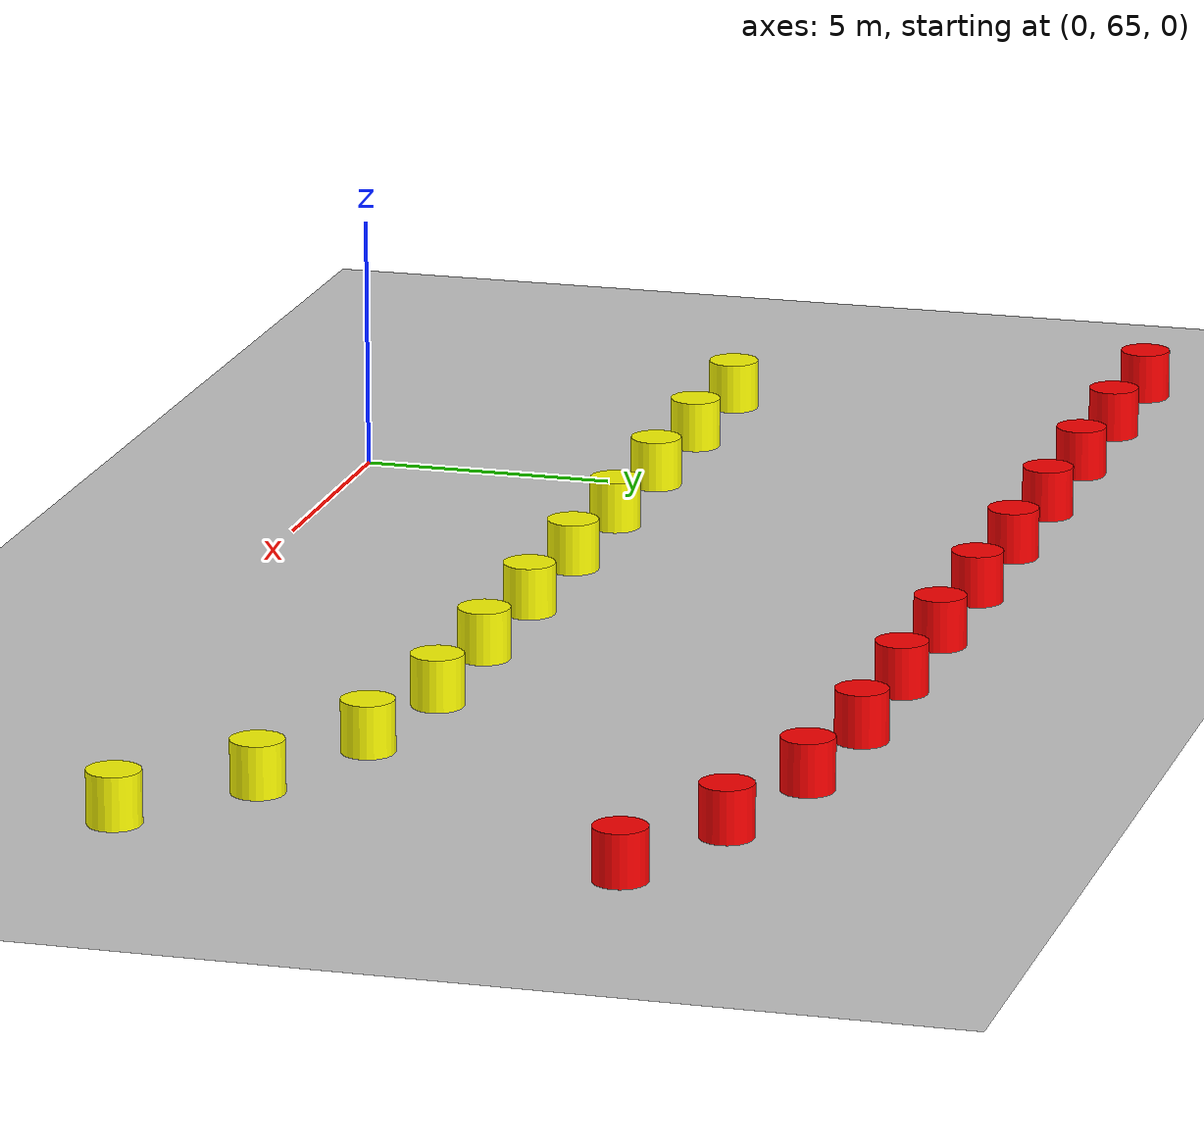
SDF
<sdf version="1.9">
 <world name="empty">
  <model name="ground_plane">
   <static>true</static>
   <link name="link">
    <collision name="collision">
     <geometry><plane><normal>0 0 1</normal><size>1000 1000</size></plane></geometry>
    </collision>
    <visual name="visual">
     <geometry><plane><normal>0 0 1</normal><size>1000 1000</size></plane></geometry>
     <material>
      <ambient>0.8 0.8 0.8 1</ambient>
      <diffuse>0.8 0.8 0.8 1</diffuse>
      <specular>0.8 0.8 0.8 1</specular>
     </material>
    </visual>
    <inertial>
     <mass>1</mass>
     <inertia><ixx>1</ixx><ixy>0</ixy><ixz>0</ixz><iyy>1</iyy><iyz>0</iyz><izz>1</izz></inertia>
    </inertial>
   </link>
  </model>
  <model name="red_cone_51">
   <pose>-9.000000000000004 79.0 0.5 0 -0 0</pose>
   <link name="cylinder_link">
    <inertial>
     <inertia>
      <ixx>0.14580000000000001</ixx>
      <ixy>0</ixy>
      <ixz>0</ixz>
      <iyy>0.14580000000000001</iyy>
      <iyz>0</iyz>
      <izz>0.125</izz>
     </inertia>
     <mass>1</mass>
    </inertial>
    <collision name="cylinder_collision">
     <geometry><cylinder><radius>0.5</radius><length>1</length></cylinder></geometry>
    </collision>
    <visual name="cylinder_visual">
     <geometry><cylinder><radius>0.5</radius><length>1</length></cylinder></geometry>
     <material><ambient>1 0 0 1</ambient><diffuse>1 0 0 1</diffuse><specular>1 1 1 1</specular></material>
    </visual>
   </link>
   <static>false</static>
  </model>
  <model name="red_cone_52">
   <pose>-6.0000000000000036 79.0 0.5 0 -0 0</pose>
   <link name="cylinder_link">
    <inertial>
     <inertia>
      <ixx>0.14580000000000001</ixx>
      <ixy>0</ixy>
      <ixz>0</ixz>
      <iyy>0.14580000000000001</iyy>
      <iyz>0</iyz>
      <izz>0.125</izz>
     </inertia>
     <mass>1</mass>
    </inertial>
    <collision name="cylinder_collision">
     <geometry><cylinder><radius>0.5</radius><length>1</length></cylinder></geometry>
    </collision>
    <visual name="cylinder_visual">
     <geometry><cylinder><radius>0.5</radius><length>1</length></cylinder></geometry>
     <material><ambient>1 0 0 1</ambient><diffuse>1 0 0 1</diffuse><specular>1 1 1 1</specular></material>
    </visual>
   </link>
   <static>false</static>
  </model>
  <model name="red_cone_53">
   <pose>-3.0000000000000036 79.0 0.5 0 -0 0</pose>
   <link name="cylinder_link">
    <inertial>
     <inertia>
      <ixx>0.14580000000000001</ixx>
      <ixy>0</ixy>
      <ixz>0</ixz>
      <iyy>0.14580000000000001</iyy>
      <iyz>0</iyz>
      <izz>0.125</izz>
     </inertia>
     <mass>1</mass>
    </inertial>
    <collision name="cylinder_collision">
     <geometry><cylinder><radius>0.5</radius><length>1</length></cylinder></geometry>
    </collision>
    <visual name="cylinder_visual">
     <geometry><cylinder><radius>0.5</radius><length>1</length></cylinder></geometry>
     <material><ambient>1 0 0 1</ambient><diffuse>1 0 0 1</diffuse><specular>1 1 1 1</specular></material>
    </visual>
   </link>
   <static>false</static>
  </model>
  <model name="red_cone_54">
   <pose>-3.552713678800501e-15 79.0 0.5 0 -0 0</pose>
   <link name="cylinder_link">
    <inertial>
     <inertia>
      <ixx>0.14580000000000001</ixx>
      <ixy>0</ixy>
      <ixz>0</ixz>
      <iyy>0.14580000000000001</iyy>
      <iyz>0</iyz>
      <izz>0.125</izz>
     </inertia>
     <mass>1</mass>
    </inertial>
    <collision name="cylinder_collision">
     <geometry><cylinder><radius>0.5</radius><length>1</length></cylinder></geometry>
    </collision>
    <visual name="cylinder_visual">
     <geometry><cylinder><radius>0.5</radius><length>1</length></cylinder></geometry>
     <material><ambient>1 0 0 1</ambient><diffuse>1 0 0 1</diffuse><specular>1 1 1 1</specular></material>
    </visual>
   </link>
   <static>false</static>
  </model>
  <model name="red_cone_55">
   <pose>2.9999999999999964 79.0 0.5 0 -0 0</pose>
   <link name="cylinder_link">
    <inertial>
     <inertia>
      <ixx>0.14580000000000001</ixx>
      <ixy>0</ixy>
      <ixz>0</ixz>
      <iyy>0.14580000000000001</iyy>
      <iyz>0</iyz>
      <izz>0.125</izz>
     </inertia>
     <mass>1</mass>
    </inertial>
    <collision name="cylinder_collision">
     <geometry><cylinder><radius>0.5</radius><length>1</length></cylinder></geometry>
    </collision>
    <visual name="cylinder_visual">
     <geometry><cylinder><radius>0.5</radius><length>1</length></cylinder></geometry>
     <material><ambient>1 0 0 1</ambient><diffuse>1 0 0 1</diffuse><specular>1 1 1 1</specular></material>
    </visual>
   </link>
   <static>false</static>
  </model>
  <model name="red_cone_56">
   <pose>5.9999999999999964 79.0 0.5 0 -0 0</pose>
   <link name="cylinder_link">
    <inertial>
     <inertia>
      <ixx>0.14580000000000001</ixx>
      <ixy>0</ixy>
      <ixz>0</ixz>
      <iyy>0.14580000000000001</iyy>
      <iyz>0</iyz>
      <izz>0.125</izz>
     </inertia>
     <mass>1</mass>
    </inertial>
    <collision name="cylinder_collision">
     <geometry><cylinder><radius>0.5</radius><length>1</length></cylinder></geometry>
    </collision>
    <visual name="cylinder_visual">
     <geometry><cylinder><radius>0.5</radius><length>1</length></cylinder></geometry>
     <material><ambient>1 0 0 1</ambient><diffuse>1 0 0 1</diffuse><specular>1 1 1 1</specular></material>
    </visual>
   </link>
   <static>false</static>
  </model>
  <model name="red_cone_57">
   <pose>8.999999999999996 79.0 0.5 0 -0 0</pose>
   <link name="cylinder_link">
    <inertial>
     <inertia>
      <ixx>0.14580000000000001</ixx>
      <ixy>0</ixy>
      <ixz>0</ixz>
      <iyy>0.14580000000000001</iyy>
      <iyz>0</iyz>
      <izz>0.125</izz>
     </inertia>
     <mass>1</mass>
    </inertial>
    <collision name="cylinder_collision">
     <geometry><cylinder><radius>0.5</radius><length>1</length></cylinder></geometry>
    </collision>
    <visual name="cylinder_visual">
     <geometry><cylinder><radius>0.5</radius><length>1</length></cylinder></geometry>
     <material><ambient>1 0 0 1</ambient><diffuse>1 0 0 1</diffuse><specular>1 1 1 1</specular></material>
    </visual>
   </link>
   <static>false</static>
  </model>
  <model name="red_cone_58">
   <pose>11.999999999999996 79.0 0.5 0 -0 0</pose>
   <link name="cylinder_link">
    <inertial>
     <inertia>
      <ixx>0.14580000000000001</ixx>
      <ixy>0</ixy>
      <ixz>0</ixz>
      <iyy>0.14580000000000001</iyy>
      <iyz>0</iyz>
      <izz>0.125</izz>
     </inertia>
     <mass>1</mass>
    </inertial>
    <collision name="cylinder_collision">
     <geometry><cylinder><radius>0.5</radius><length>1</length></cylinder></geometry>
    </collision>
    <visual name="cylinder_visual">
     <geometry><cylinder><radius>0.5</radius><length>1</length></cylinder></geometry>
     <material><ambient>1 0 0 1</ambient><diffuse>1 0 0 1</diffuse><specular>1 1 1 1</specular></material>
    </visual>
   </link>
   <static>false</static>
  </model>
  <model name="red_cone_59">
   <pose>14.999999999999996 79.0 0.5 0 -0 0</pose>
   <link name="cylinder_link">
    <inertial>
     <inertia>
      <ixx>0.14580000000000001</ixx>
      <ixy>0</ixy>
      <ixz>0</ixz>
      <iyy>0.14580000000000001</iyy>
      <iyz>0</iyz>
      <izz>0.125</izz>
     </inertia>
     <mass>1</mass>
    </inertial>
    <collision name="cylinder_collision">
     <geometry><cylinder><radius>0.5</radius><length>1</length></cylinder></geometry>
    </collision>
    <visual name="cylinder_visual">
     <geometry><cylinder><radius>0.5</radius><length>1</length></cylinder></geometry>
     <material><ambient>1 0 0 1</ambient><diffuse>1 0 0 1</diffuse><specular>1 1 1 1</specular></material>
    </visual>
   </link>
   <static>false</static>
  </model>
  <model name="red_cone_60">
   <pose>14.999999999999993 79.0 0.5 0 -0 0</pose>
   <link name="cylinder_link">
    <inertial>
     <inertia>
      <ixx>0.14580000000000001</ixx>
      <ixy>0</ixy>
      <ixz>0</ixz>
      <iyy>0.14580000000000001</iyy>
      <iyz>0</iyz>
      <izz>0.125</izz>
     </inertia>
     <mass>1</mass>
    </inertial>
    <collision name="cylinder_collision">
     <geometry><cylinder><radius>0.5</radius><length>1</length></cylinder></geometry>
    </collision>
    <visual name="cylinder_visual">
     <geometry><cylinder><radius>0.5</radius><length>1</length></cylinder></geometry>
     <material><ambient>1 0 0 1</ambient><diffuse>1 0 0 1</diffuse><specular>1 1 1 1</specular></material>
    </visual>
   </link>
   <static>false</static>
  </model>
  <model name="red_cone_61">
   <pose>17.98755015537325 78.76364954024481 0.5 0 -0 0</pose>
   <link name="cylinder_link">
    <inertial>
     <inertia>
      <ixx>0.14580000000000001</ixx>
      <ixy>0</ixy>
      <ixz>0</ixz>
      <iyy>0.14580000000000001</iyy>
      <iyz>0</iyz>
      <izz>0.125</izz>
     </inertia>
     <mass>1</mass>
    </inertial>
    <collision name="cylinder_collision">
     <geometry><cylinder><radius>0.5</radius><length>1</length></cylinder></geometry>
    </collision>
    <visual name="cylinder_visual">
     <geometry><cylinder><radius>0.5</radius><length>1</length></cylinder></geometry>
     <material><ambient>1 0 0 1</ambient><diffuse>1 0 0 1</diffuse><specular>1 1 1 1</specular></material>
    </visual>
   </link>
   <static>false</static>
  </model>
  <model name="red_cone_62">
   <pose>20.90077306308712 78.06047832306623 0.5 0 -0 0</pose>
   <link name="cylinder_link">
    <inertial>
     <inertia>
      <ixx>0.14580000000000001</ixx>
      <ixy>0</ixy>
      <ixz>0</ixz>
      <iyy>0.14580000000000001</iyy>
      <iyz>0</iyz>
      <izz>0.125</izz>
     </inertia>
     <mass>1</mass>
    </inertial>
    <collision name="cylinder_collision">
     <geometry><cylinder><radius>0.5</radius><length>1</length></cylinder></geometry>
    </collision>
    <visual name="cylinder_visual">
     <geometry><cylinder><radius>0.5</radius><length>1</length></cylinder></geometry>
     <material><ambient>1 0 0 1</ambient><diffuse>1 0 0 1</diffuse><specular>1 1 1 1</specular></material>
    </visual>
   </link>
   <static>false</static>
  </model>
  <model name="red_cone_63">
   <pose>23.667190662761865 76.90798054219762 0.5 0 -0 0</pose>
   <link name="cylinder_link">
    <inertial>
     <inertia>
      <ixx>0.14580000000000001</ixx>
      <ixy>0</ixy>
      <ixz>0</ixz>
      <iyy>0.14580000000000001</iyy>
      <iyz>0</iyz>
      <izz>0.125</izz>
     </inertia>
     <mass>1</mass>
    </inertial>
    <collision name="cylinder_collision">
     <geometry><cylinder><radius>0.5</radius><length>1</length></cylinder></geometry>
    </collision>
    <visual name="cylinder_visual">
     <geometry><cylinder><radius>0.5</radius><length>1</length></cylinder></geometry>
     <material><ambient>1 0 0 1</ambient><diffuse>1 0 0 1</diffuse><specular>1 1 1 1</specular></material>
    </visual>
   </link>
   <static>false</static>
  </model>
  <model name="yellow_cone_48">
   <pose>-6.0000000000000036 71.0 0.5 0 -0 0</pose>
   <link name="cylinder_link">
    <inertial>
     <inertia>
      <ixx>0.14580000000000001</ixx>
      <ixy>0</ixy>
      <ixz>0</ixz>
      <iyy>0.14580000000000001</iyy>
      <iyz>0</iyz>
      <izz>0.125</izz>
     </inertia>
     <mass>1</mass>
    </inertial>
    <collision name="cylinder_collision">
     <geometry><cylinder><radius>0.5</radius><length>1</length></cylinder></geometry>
    </collision>
    <visual name="cylinder_visual">
     <geometry><cylinder><radius>0.5</radius><length>1</length></cylinder></geometry>
     <material><ambient>1 1 0 1</ambient><diffuse>1 1 0 1</diffuse><specular>1 1 1 1</specular></material>
    </visual>
   </link>
   <static>false</static>
  </model>
  <model name="yellow_cone_49">
   <pose>-3.0000000000000036 71.0 0.5 0 -0 0</pose>
   <link name="cylinder_link">
    <inertial>
     <inertia>
      <ixx>0.14580000000000001</ixx>
      <ixy>0</ixy>
      <ixz>0</ixz>
      <iyy>0.14580000000000001</iyy>
      <iyz>0</iyz>
      <izz>0.125</izz>
     </inertia>
     <mass>1</mass>
    </inertial>
    <collision name="cylinder_collision">
     <geometry><cylinder><radius>0.5</radius><length>1</length></cylinder></geometry>
    </collision>
    <visual name="cylinder_visual">
     <geometry><cylinder><radius>0.5</radius><length>1</length></cylinder></geometry>
     <material><ambient>1 1 0 1</ambient><diffuse>1 1 0 1</diffuse><specular>1 1 1 1</specular></material>
    </visual>
   </link>
   <static>false</static>
  </model>
  <model name="yellow_cone_50">
   <pose>-3.552713678800501e-15 71.0 0.5 0 -0 0</pose>
   <link name="cylinder_link">
    <inertial>
     <inertia>
      <ixx>0.14580000000000001</ixx>
      <ixy>0</ixy>
      <ixz>0</ixz>
      <iyy>0.14580000000000001</iyy>
      <iyz>0</iyz>
      <izz>0.125</izz>
     </inertia>
     <mass>1</mass>
    </inertial>
    <collision name="cylinder_collision">
     <geometry><cylinder><radius>0.5</radius><length>1</length></cylinder></geometry>
    </collision>
    <visual name="cylinder_visual">
     <geometry><cylinder><radius>0.5</radius><length>1</length></cylinder></geometry>
     <material><ambient>1 1 0 1</ambient><diffuse>1 1 0 1</diffuse><specular>1 1 1 1</specular></material>
    </visual>
   </link>
   <static>false</static>
  </model>
  <model name="yellow_cone_51">
   <pose>2.9999999999999964 71.0 0.5 0 -0 0</pose>
   <link name="cylinder_link">
    <inertial>
     <inertia>
      <ixx>0.14580000000000001</ixx>
      <ixy>0</ixy>
      <ixz>0</ixz>
      <iyy>0.14580000000000001</iyy>
      <iyz>0</iyz>
      <izz>0.125</izz>
     </inertia>
     <mass>1</mass>
    </inertial>
    <collision name="cylinder_collision">
     <geometry><cylinder><radius>0.5</radius><length>1</length></cylinder></geometry>
    </collision>
    <visual name="cylinder_visual">
     <geometry><cylinder><radius>0.5</radius><length>1</length></cylinder></geometry>
     <material><ambient>1 1 0 1</ambient><diffuse>1 1 0 1</diffuse><specular>1 1 1 1</specular></material>
    </visual>
   </link>
   <static>false</static>
  </model>
  <model name="yellow_cone_52">
   <pose>5.9999999999999964 71.0 0.5 0 -0 0</pose>
   <link name="cylinder_link">
    <inertial>
     <inertia>
      <ixx>0.14580000000000001</ixx>
      <ixy>0</ixy>
      <ixz>0</ixz>
      <iyy>0.14580000000000001</iyy>
      <iyz>0</iyz>
      <izz>0.125</izz>
     </inertia>
     <mass>1</mass>
    </inertial>
    <collision name="cylinder_collision">
     <geometry><cylinder><radius>0.5</radius><length>1</length></cylinder></geometry>
    </collision>
    <visual name="cylinder_visual">
     <geometry><cylinder><radius>0.5</radius><length>1</length></cylinder></geometry>
     <material><ambient>1 1 0 1</ambient><diffuse>1 1 0 1</diffuse><specular>1 1 1 1</specular></material>
    </visual>
   </link>
   <static>false</static>
  </model>
  <model name="yellow_cone_53">
   <pose>8.999999999999996 71.0 0.5 0 -0 0</pose>
   <link name="cylinder_link">
    <inertial>
     <inertia>
      <ixx>0.14580000000000001</ixx>
      <ixy>0</ixy>
      <ixz>0</ixz>
      <iyy>0.14580000000000001</iyy>
      <iyz>0</iyz>
      <izz>0.125</izz>
     </inertia>
     <mass>1</mass>
    </inertial>
    <collision name="cylinder_collision">
     <geometry><cylinder><radius>0.5</radius><length>1</length></cylinder></geometry>
    </collision>
    <visual name="cylinder_visual">
     <geometry><cylinder><radius>0.5</radius><length>1</length></cylinder></geometry>
     <material><ambient>1 1 0 1</ambient><diffuse>1 1 0 1</diffuse><specular>1 1 1 1</specular></material>
    </visual>
   </link>
   <static>false</static>
  </model>
  <model name="yellow_cone_54">
   <pose>11.999999999999996 71.0 0.5 0 -0 0</pose>
   <link name="cylinder_link">
    <inertial>
     <inertia>
      <ixx>0.14580000000000001</ixx>
      <ixy>0</ixy>
      <ixz>0</ixz>
      <iyy>0.14580000000000001</iyy>
      <iyz>0</iyz>
      <izz>0.125</izz>
     </inertia>
     <mass>1</mass>
    </inertial>
    <collision name="cylinder_collision">
     <geometry><cylinder><radius>0.5</radius><length>1</length></cylinder></geometry>
    </collision>
    <visual name="cylinder_visual">
     <geometry><cylinder><radius>0.5</radius><length>1</length></cylinder></geometry>
     <material><ambient>1 1 0 1</ambient><diffuse>1 1 0 1</diffuse><specular>1 1 1 1</specular></material>
    </visual>
   </link>
   <static>false</static>
  </model>
  <model name="yellow_cone_55">
   <pose>14.999999999999996 71.0 0.5 0 -0 0</pose>
   <link name="cylinder_link">
    <inertial>
     <inertia>
      <ixx>0.14580000000000001</ixx>
      <ixy>0</ixy>
      <ixz>0</ixz>
      <iyy>0.14580000000000001</iyy>
      <iyz>0</iyz>
      <izz>0.125</izz>
     </inertia>
     <mass>1</mass>
    </inertial>
    <collision name="cylinder_collision">
     <geometry><cylinder><radius>0.5</radius><length>1</length></cylinder></geometry>
    </collision>
    <visual name="cylinder_visual">
     <geometry><cylinder><radius>0.5</radius><length>1</length></cylinder></geometry>
     <material><ambient>1 1 0 1</ambient><diffuse>1 1 0 1</diffuse><specular>1 1 1 1</specular></material>
    </visual>
   </link>
   <static>false</static>
  </model>
  <model name="yellow_cone_56">
   <pose>14.999999999999995 71.0 0.5 0 -0 0</pose>
   <link name="cylinder_link">
    <inertial>
     <inertia>
      <ixx>0.14580000000000001</ixx>
      <ixy>0</ixy>
      <ixz>0</ixz>
      <iyy>0.14580000000000001</iyy>
      <iyz>0</iyz>
      <izz>0.125</izz>
     </inertia>
     <mass>1</mass>
    </inertial>
    <collision name="cylinder_collision">
     <geometry><cylinder><radius>0.5</radius><length>1</length></cylinder></geometry>
    </collision>
    <visual name="cylinder_visual">
     <geometry><cylinder><radius>0.5</radius><length>1</length></cylinder></geometry>
     <material><ambient>1 1 0 1</ambient><diffuse>1 1 0 1</diffuse><specular>1 1 1 1</specular></material>
    </visual>
   </link>
   <static>false</static>
  </model>
  <model name="yellow_cone_57">
   <pose>17.962947982891578 70.59343849987712 0.5 0 -0 0</pose>
   <link name="cylinder_link">
    <inertial>
     <inertia>
      <ixx>0.14580000000000001</ixx>
      <ixy>0</ixy>
      <ixz>0</ixz>
      <iyy>0.14580000000000001</iyy>
      <iyz>0</iyz>
      <izz>0.125</izz>
     </inertia>
     <mass>1</mass>
    </inertial>
    <collision name="cylinder_collision">
     <geometry><cylinder><radius>0.5</radius><length>1</length></cylinder></geometry>
    </collision>
    <visual name="cylinder_visual">
     <geometry><cylinder><radius>0.5</radius><length>1</length></cylinder></geometry>
     <material><ambient>1 1 0 1</ambient><diffuse>1 1 0 1</diffuse><specular>1 1 1 1</specular></material>
    </visual>
   </link>
   <static>false</static>
  </model>
  <model name="yellow_cone_58">
   <pose>20.70687404274489 69.40380713648703 0.5 0 -0 0</pose>
   <link name="cylinder_link">
    <inertial>
     <inertia>
      <ixx>0.14580000000000001</ixx>
      <ixy>0</ixy>
      <ixz>0</ixz>
      <iyy>0.14580000000000001</iyy>
      <iyz>0</iyz>
      <izz>0.125</izz>
     </inertia>
     <mass>1</mass>
    </inertial>
    <collision name="cylinder_collision">
     <geometry><cylinder><radius>0.5</radius><length>1</length></cylinder></geometry>
    </collision>
    <visual name="cylinder_visual">
     <geometry><cylinder><radius>0.5</radius><length>1</length></cylinder></geometry>
     <material><ambient>1 1 0 1</ambient><diffuse>1 1 0 1</diffuse><specular>1 1 1 1</specular></material>
    </visual>
   </link>
   <static>false</static>
  </model>
  <model name="yellow_cone_59">
   <pose>23.028946416810808 67.51904378468305 0.5 0 -0 0</pose>
   <link name="cylinder_link">
    <inertial>
     <inertia>
      <ixx>0.14580000000000001</ixx>
      <ixy>0</ixy>
      <ixz>0</ixz>
      <iyy>0.14580000000000001</iyy>
      <iyz>0</iyz>
      <izz>0.125</izz>
     </inertia>
     <mass>1</mass>
    </inertial>
    <collision name="cylinder_collision">
     <geometry><cylinder><radius>0.5</radius><length>1</length></cylinder></geometry>
    </collision>
    <visual name="cylinder_visual">
     <geometry><cylinder><radius>0.5</radius><length>1</length></cylinder></geometry>
     <material><ambient>1 1 0 1</ambient><diffuse>1 1 0 1</diffuse><specular>1 1 1 1</specular></material>
    </visual>
   </link>
   <static>false</static>
  </model>
 </world>
</sdf>
